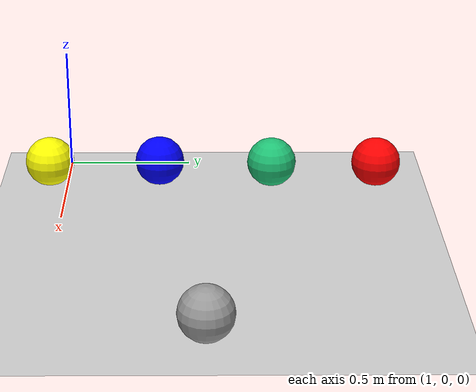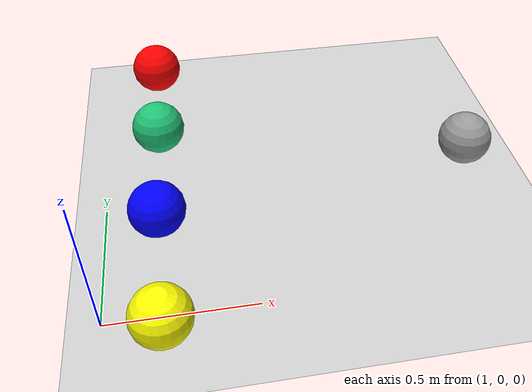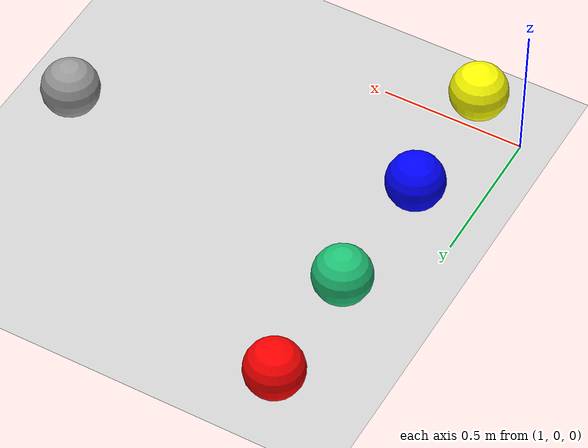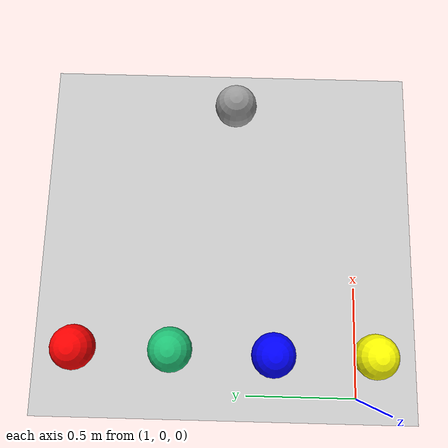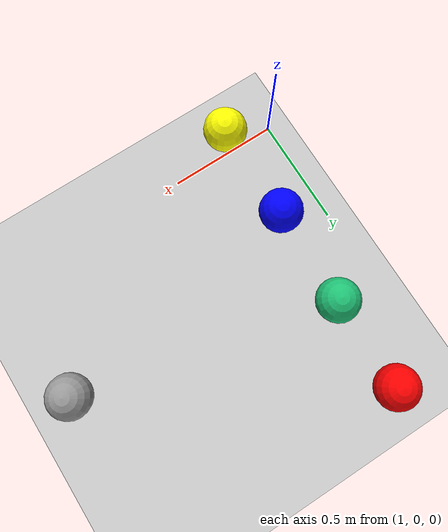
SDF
<sdf version="1.6">
 <world name="default">
  <model name="ground_plane">
   <static>1</static>
   <link name="link">
    <collision name="collision">
     <geometry><plane><normal>0 0 1</normal><size>100 100</size></plane></geometry>
     <surface>
      <contact><collide_bitmask>65535</collide_bitmask></contact>
      <friction><ode><mu>100</mu><mu2>50</mu2></ode></friction>
     </surface>
    </collision>
    <visual name="visual">
     <cast_shadows>0</cast_shadows>
     <geometry><plane><normal>0 0 1</normal><size>100 100</size></plane></geometry>
     <material>
      <script><uri>file://media/materials/scripts/gazebo.material</uri><name>Gazebo/Grey</name></script>
     </material>
    </visual>
   </link>
  </model>
  <model name="blue_ball">
   <link name="link_0">
    <inertial>
     <mass>1</mass>
     <inertia><ixx>0.1</ixx><ixy>0</ixy><ixz>0</ixz><iyy>0.1</iyy><iyz>0</iyz><izz>0.1</izz></inertia>
    </inertial>
    <visual name="visual">
     <geometry><sphere><radius>0.1</radius></sphere></geometry>
     <material>
      <lighting>1</lighting>
      <script><uri>file://media/materials/scripts/gazebo.material</uri><name>Gazebo/Grey</name></script>
      <shader type="pixel"><normal_map>__default__</normal_map></shader>
      <ambient>0 0 1 1</ambient>
      <diffuse>0 0 1 1</diffuse>
      <specular>0 0 1 1</specular>
      <emissive>0 0 1 1</emissive>
     </material>
    </visual>
    <collision name="collision">
     <geometry><sphere><radius>0.1</radius></sphere></geometry>
     <surface>
      <friction>
       <ode><mu>1</mu><mu2>1</mu2><fdir1>0 0 0</fdir1><slip1>0</slip1><slip2>0</slip2></ode>
       <torsional>
        <coefficient>1</coefficient>
        <patch_radius>0</patch_radius>
        <surface_radius>0</surface_radius>
        <use_patch_radius>1</use_patch_radius>
        <ode><slip>0</slip></ode>
       </torsional>
      </friction>
      <bounce><restitution_coefficient>0</restitution_coefficient><threshold>1e+06</threshold></bounce>
      <contact>
       <collide_without_contact>0</collide_without_contact>
       <collide_without_contact_bitmask>1</collide_without_contact_bitmask>
       <collide_bitmask>1</collide_bitmask>
       <ode>
        <soft_cfm>0</soft_cfm>
        <soft_erp>0.2</soft_erp>
        <kp>1e+13</kp>
        <kd>1</kd>
        <max_vel>0.01</max_vel>
        <min_depth>0</min_depth>
       </ode>
       <bullet>
        <split_impulse>1</split_impulse>
        <split_impulse_penetration_threshold>-0.01</split_impulse_penetration_threshold>
        <soft_cfm>0</soft_cfm>
        <soft_erp>0.2</soft_erp>
        <kp>1e+13</kp>
        <kd>1</kd>
       </bullet>
      </contact>
     </surface>
    </collision>
   </link>
   <static>0</static>
   <pose>1.18891 0.383605 0.1 0 -0 0</pose>
  </model>
  <model name="green_ball">
   <link name="link_0">
    <inertial>
     <mass>1</mass>
     <inertia><ixx>0.1</ixx><ixy>0</ixy><ixz>0</ixz><iyy>0.1</iyy><iyz>0</iyz><izz>0.1</izz></inertia>
    </inertial>
    <visual name="visual">
     <geometry><sphere><radius>0.1</radius></sphere></geometry>
     <material>
      <lighting>1</lighting>
      <script><uri>file://media/materials/scripts/gazebo.material</uri><name>Gazebo/Grey</name></script>
      <shader type="pixel"><normal_map>__default__</normal_map></shader>
      <ambient>0.12 0.76 0.46 1</ambient>
      <diffuse>0.12 0.76 0.46 1</diffuse>
      <specular>0.12 0.76 0.46 1</specular>
      <emissive>0.12 0.76 0.46 1</emissive>
     </material>
    </visual>
    <collision name="collision">
     <geometry><sphere><radius>0.1</radius></sphere></geometry>
     <surface>
      <friction>
       <ode><mu>1</mu><mu2>1</mu2><fdir1>0 0 0</fdir1><slip1>0</slip1><slip2>0</slip2></ode>
       <torsional>
        <coefficient>1</coefficient>
        <patch_radius>0</patch_radius>
        <surface_radius>0</surface_radius>
        <use_patch_radius>1</use_patch_radius>
        <ode><slip>0</slip></ode>
       </torsional>
      </friction>
      <bounce><restitution_coefficient>0</restitution_coefficient><threshold>1e+06</threshold></bounce>
      <contact>
       <collide_without_contact>0</collide_without_contact>
       <collide_without_contact_bitmask>1</collide_without_contact_bitmask>
       <collide_bitmask>1</collide_bitmask>
       <ode>
        <soft_cfm>0</soft_cfm>
        <soft_erp>0.2</soft_erp>
        <kp>1e+13</kp>
        <kd>1</kd>
        <max_vel>0.01</max_vel>
        <min_depth>0</min_depth>
       </ode>
       <bullet>
        <split_impulse>1</split_impulse>
        <split_impulse_penetration_threshold>-0.01</split_impulse_penetration_threshold>
        <soft_cfm>0</soft_cfm>
        <soft_erp>0.2</soft_erp>
        <kp>1e+13</kp>
        <kd>1</kd>
       </bullet>
      </contact>
     </surface>
    </collision>
   </link>
   <static>0</static>
   <pose>1.20207 0.844553 0.1 0 -0 0</pose>
  </model>
  <model name="yellow_ball">
   <link name="link_0">
    <inertial>
     <mass>1</mass>
     <inertia><ixx>0.1</ixx><ixy>0</ixy><ixz>0</ixz><iyy>0.1</iyy><iyz>0</iyz><izz>0.1</izz></inertia>
    </inertial>
    <visual name="visual">
     <geometry><sphere><radius>0.1</radius></sphere></geometry>
     <material>
      <lighting>1</lighting>
      <script><uri>file://media/materials/scripts/gazebo.material</uri><name>Gazebo/Grey</name></script>
      <shader type="pixel"><normal_map>__default__</normal_map></shader>
      <ambient>1 1 0 1</ambient>
      <diffuse>1 1 0 1</diffuse>
      <specular>1 1 0 1</specular>
      <emissive>1 1 0 1</emissive>
     </material>
    </visual>
    <collision name="collision">
     <geometry><sphere><radius>0.1</radius></sphere></geometry>
     <surface>
      <friction>
       <ode><mu>1</mu><mu2>1</mu2><fdir1>0 0 0</fdir1><slip1>0</slip1><slip2>0</slip2></ode>
       <torsional>
        <coefficient>1</coefficient>
        <patch_radius>0</patch_radius>
        <surface_radius>0</surface_radius>
        <use_patch_radius>1</use_patch_radius>
        <ode><slip>0</slip></ode>
       </torsional>
      </friction>
      <bounce><restitution_coefficient>0</restitution_coefficient><threshold>1e+06</threshold></bounce>
      <contact>
       <collide_without_contact>0</collide_without_contact>
       <collide_without_contact_bitmask>1</collide_without_contact_bitmask>
       <collide_bitmask>1</collide_bitmask>
       <ode>
        <soft_cfm>0</soft_cfm>
        <soft_erp>0.2</soft_erp>
        <kp>1e+13</kp>
        <kd>1</kd>
        <max_vel>0.01</max_vel>
        <min_depth>0</min_depth>
       </ode>
       <bullet>
        <split_impulse>1</split_impulse>
        <split_impulse_penetration_threshold>-0.01</split_impulse_penetration_threshold>
        <soft_cfm>0</soft_cfm>
        <soft_erp>0.2</soft_erp>
        <kp>1e+13</kp>
        <kd>1</kd>
       </bullet>
      </contact>
     </surface>
    </collision>
   </link>
   <static>0</static>
   <pose>1.19328 -0.069316 0.1 0 -0 0</pose>
  </model>
  <model name="white_ball">
   <link name="link_0">
    <inertial>
     <mass>1</mass>
     <inertia><ixx>0.1</ixx><ixy>0</ixy><ixz>0</ixz><iyy>0.1</iyy><iyz>0</iyz><izz>0.1</izz></inertia>
    </inertial>
    <visual name="visual">
     <geometry><sphere><radius>0.1</radius></sphere></geometry>
     <material>
      <lighting>1</lighting>
      <script><uri>file://media/materials/scripts/gazebo.material</uri><name>Gazebo/Grey</name></script>
      <shader type="pixel"><normal_map>__default__</normal_map></shader>
      <ambient>1 1 1 1</ambient>
      <diffuse>1 1 1 1</diffuse>
      <specular>1 1 1 1</specular>
      <emissive>1 1 1 1</emissive>
     </material>
    </visual>
    <collision name="collision">
     <geometry><sphere><radius>0.1</radius></sphere></geometry>
     <surface>
      <friction>
       <ode><mu>1</mu><mu2>1</mu2><fdir1>0 0 0</fdir1><slip1>0</slip1><slip2>0</slip2></ode>
       <torsional>
        <coefficient>1</coefficient>
        <patch_radius>0</patch_radius>
        <surface_radius>0</surface_radius>
        <use_patch_radius>1</use_patch_radius>
        <ode><slip>0</slip></ode>
       </torsional>
      </friction>
      <bounce><restitution_coefficient>0</restitution_coefficient><threshold>1e+06</threshold></bounce>
      <contact>
       <collide_without_contact>0</collide_without_contact>
       <collide_without_contact_bitmask>1</collide_without_contact_bitmask>
       <collide_bitmask>1</collide_bitmask>
       <ode>
        <soft_cfm>0</soft_cfm>
        <soft_erp>0.2</soft_erp>
        <kp>1e+13</kp>
        <kd>1</kd>
        <max_vel>0.01</max_vel>
        <min_depth>0</min_depth>
       </ode>
       <bullet>
        <split_impulse>1</split_impulse>
        <split_impulse_penetration_threshold>-0.01</split_impulse_penetration_threshold>
        <soft_cfm>0</soft_cfm>
        <soft_erp>0.2</soft_erp>
        <kp>1e+13</kp>
        <kd>1</kd>
       </bullet>
      </contact>
     </surface>
    </collision>
   </link>
   <static>0</static>
   <pose>2.36671 0.574948 0.1 0 -0 0</pose>
  </model>
  <model name="red_ball">
   <link name="link_0">
    <inertial>
     <mass>1</mass>
     <inertia><ixx>0.1</ixx><ixy>0</ixy><ixz>0</ixz><iyy>0.1</iyy><iyz>0</iyz><izz>0.1</izz></inertia>
    </inertial>
    <visual name="visual">
     <geometry><sphere><radius>0.1</radius></sphere></geometry>
     <material>
      <lighting>1</lighting>
      <script><uri>file://media/materials/scripts/gazebo.material</uri><name>Gazebo/Grey</name></script>
      <shader type="pixel"><normal_map>__default__</normal_map></shader>
      <ambient>1 0 0 1</ambient>
      <diffuse>1 0 0 1</diffuse>
      <specular>1 0 0 1</specular>
      <emissive>1 0 0 1</emissive>
     </material>
    </visual>
    <collision name="collision">
     <geometry><sphere><radius>0.1</radius></sphere></geometry>
     <surface>
      <friction>
       <ode><mu>1</mu><mu2>1</mu2><fdir1>0 0 0</fdir1><slip1>0</slip1><slip2>0</slip2></ode>
       <torsional>
        <coefficient>1</coefficient>
        <patch_radius>0</patch_radius>
        <surface_radius>0</surface_radius>
        <use_patch_radius>1</use_patch_radius>
        <ode><slip>0</slip></ode>
       </torsional>
      </friction>
      <bounce><restitution_coefficient>0</restitution_coefficient><threshold>1e+06</threshold></bounce>
      <contact>
       <collide_without_contact>0</collide_without_contact>
       <collide_without_contact_bitmask>1</collide_without_contact_bitmask>
       <collide_bitmask>1</collide_bitmask>
       <ode>
        <soft_cfm>0</soft_cfm>
        <soft_erp>0.2</soft_erp>
        <kp>1e+13</kp>
        <kd>1</kd>
        <max_vel>0.01</max_vel>
        <min_depth>0</min_depth>
       </ode>
       <bullet>
        <split_impulse>1</split_impulse>
        <split_impulse_penetration_threshold>-0.01</split_impulse_penetration_threshold>
        <soft_cfm>0</soft_cfm>
        <soft_erp>0.2</soft_erp>
        <kp>1e+13</kp>
        <kd>1</kd>
       </bullet>
      </contact>
     </surface>
    </collision>
   </link>
   <static>0</static>
   <pose>1.20233 1.27496 0.1 0 -0 0</pose>
  </model>
 </world>
</sdf>
